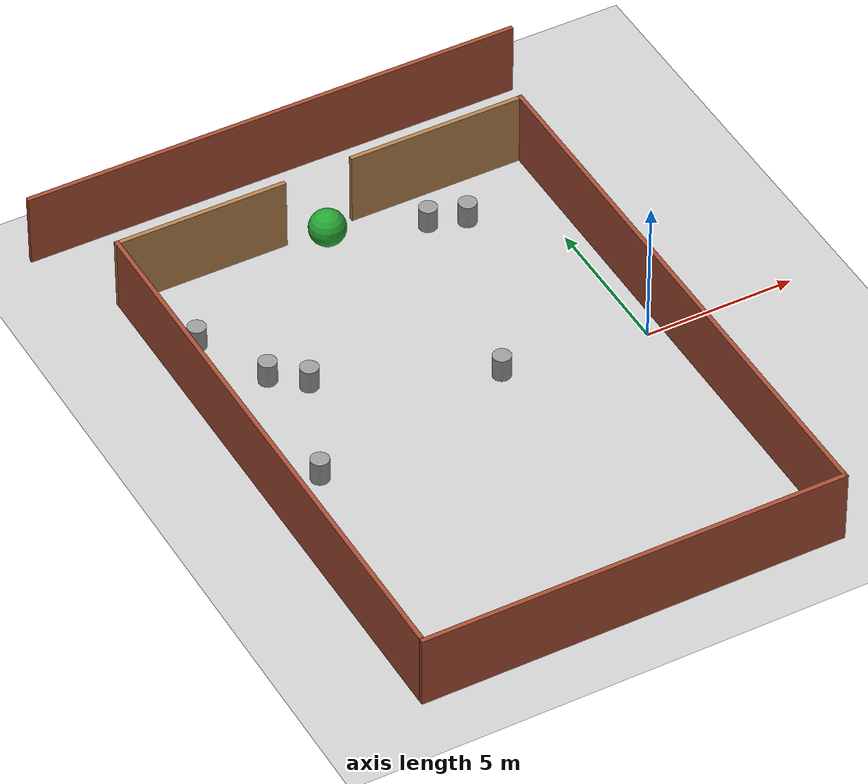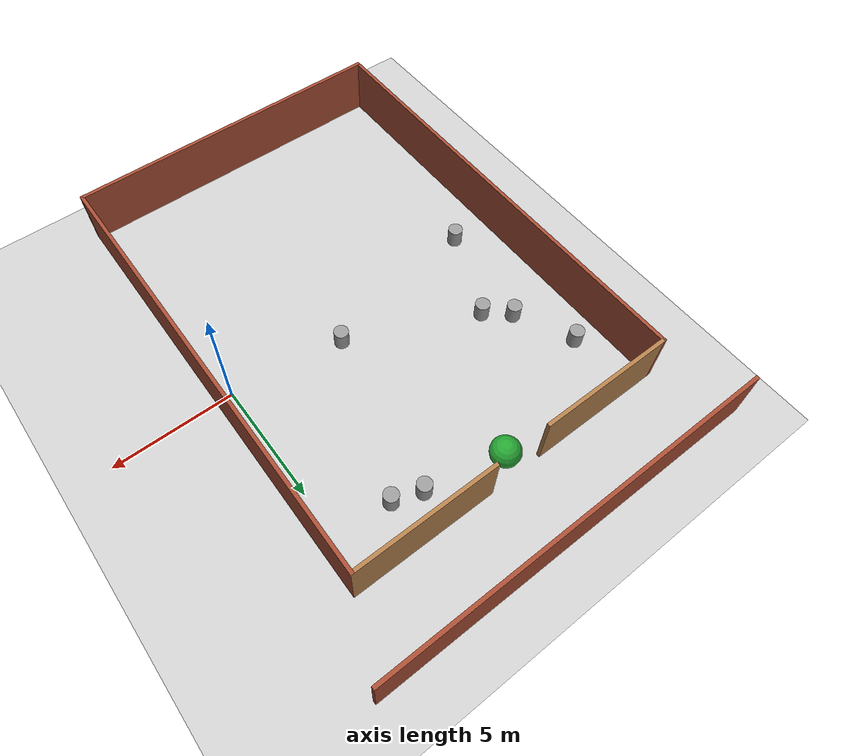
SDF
<?xml version="1.0"?>
<sdf version="1.4">
  <world name="default">
    <model name='ground_plane'>
      <static>1</static>
      <link name='link'>
        <collision name='collision'>
          <geometry>
            <plane>
              <normal>0 0 1</normal>
              <size>100 100</size>
            </plane>
          </geometry>
          <surface>
            <friction>
              <ode>
                <mu>100</mu>
                <mu2>50</mu2>
              </ode>
              <torsional>
                <ode/>
              </torsional>
            </friction>
            <contact>
              <ode/>
            </contact>
            <bounce/>
          </surface>
          <max_contacts>10</max_contacts>
        </collision>
        <visual name='visual'>
          <cast_shadows>0</cast_shadows>
          <geometry>
            <plane>
              <normal>0 0 1</normal>
              <size>100 100</size>
            </plane>
          </geometry>
          <material>
            <script>
              <uri>file://media/materials/scripts/gazebo.material</uri>
              <name>Gazebo/Tertiary</name>
            </script>
          </material>
        </visual>
        <self_collide>0</self_collide>
        <enable_wind>0</enable_wind>
        <kinematic>0</kinematic>
      </link>
    </model>
    <light name='sun' type='directional'>
      <cast_shadows>1</cast_shadows>
      <pose frame=''>0 0 10 0 -0 0</pose>
      <diffuse>0.8 0.8 0.8 1</diffuse>
      <specular>0.2 0.2 0.2 1</specular>
      <attenuation>
        <range>1000</range>
        <constant>0.9</constant>
        <linear>0.01</linear>
        <quadratic>0.001</quadratic>
      </attenuation>
      <direction>-0.5 0.1 -0.9</direction>
    </light>

    <!-- Other models -->

    <include>
      <uri>model://open_hall2</uri>
      <pose>-6.39 0.85 0 0 0 0</pose>
    </include>

    <include>
      <uri>model://dynamic_obstacle_1</uri>
      <pose>-11.53 -0.74 0.4 0 0 0</pose>
    </include>

    <include>
      <uri>model://dynamic_obstacle_2</uri>
      <pose>-4.69 0.58 0.4 0 0 0</pose>
    </include>

    <include>
      <uri>model://dynamic_obstacle_3</uri>
      <pose>-10.92 3.71 0.4 0 0 0</pose>
    </include>

    <include>
      <uri>model://dynamic_obstacle_4</uri>
      <pose>-2.26 7.07 0.4 0 0 0</pose>
    </include>

    <include>
      <uri>model://dynamic_obstacle_5</uri>
      <pose>-3.42 7.46 0.4 0 0 0</pose>
    </include>

    <include>
      <uri>model://dynamic_obstacle_6</uri>
      <pose>-9.95 2.89 0.4 0 0 0</pose>
    </include>

    <include>
      <uri>model://dynamic_obstacle_7</uri>
      <pose>-12.07 6.07 0.4 0 0 0</pose>
    </include>

    <include>
      <uri>model://goal_location</uri>
      <pose>-6.5 8.2 0.7 0 0 0</pose>
    </include>

    <!-- User Camera -->
    <gui fullscreen='0'>
      <camera name='user_camera'>
        <pose frame=''>0.92 -7.97 22.96 0 0.675643 1.58</pose>
        <view_controller>orbit</view_controller>
        <projection_type>perspective</projection_type>
      </camera>
    </gui>
  </world>
</sdf>
